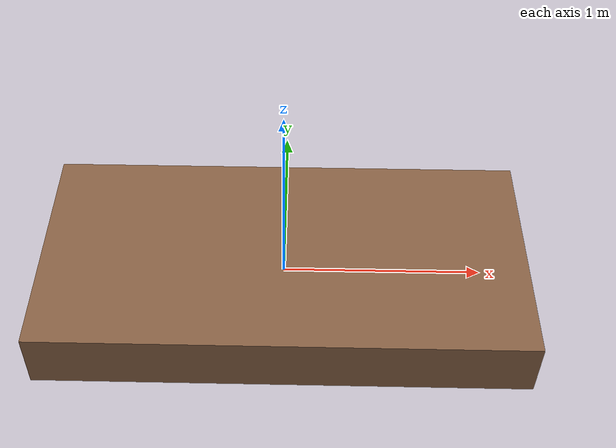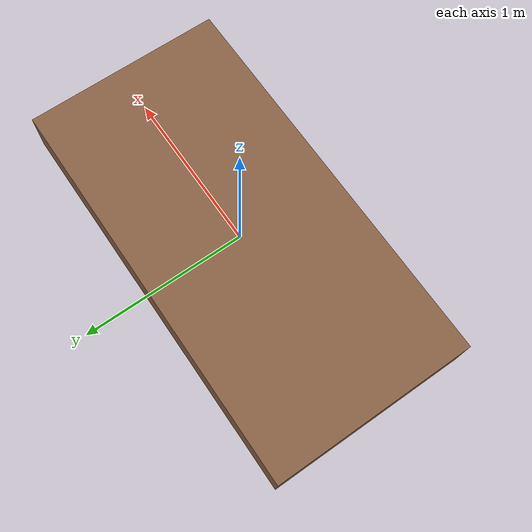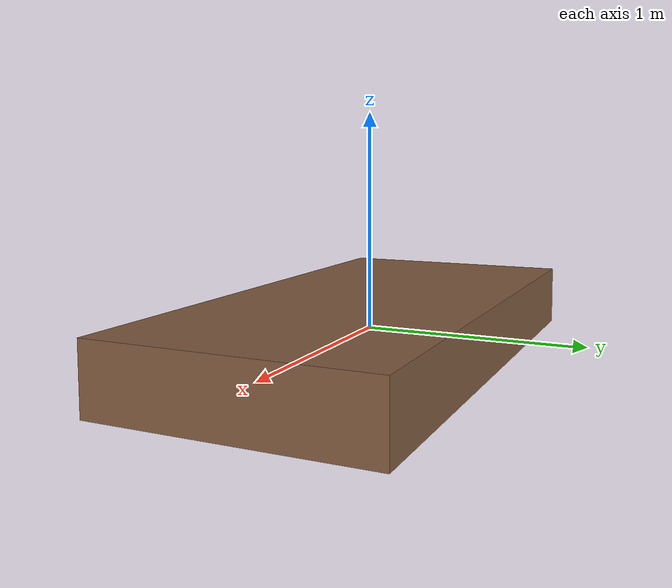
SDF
<?xml version='1.0'?>
<sdf version='1.6'>
  <model name='frame_stack_static'>
    <static>true</static>
    <link name='link'>
      <pose frame=''>0 0 0 0 -0 0</pose>
      <inertial>
        <mass>1</mass>
        <pose frame=''>0 0 0 0 -0 0</pose>
        <inertia>
          <ixx>1</ixx>
          <ixy>0</ixy>
          <ixz>0</ixz>
          <iyy>1</iyy>
          <iyz>0</iyz>
          <izz>1</izz>
        </inertia>
      </inertial>
      <self_collide>0</self_collide>
      <kinematic>0</kinematic>
      <gravity>1</gravity>
      <visual name='visual'>
        <pose frame=''>0 0 0 0 -0 0</pose>
        <geometry>
          <box>
            <size>2.4384 1.2192 0.3048</size> <!-- About 3 frames. -->
          </box>
        </geometry>
        <material>
          <shader type='pixel'>
            <normal_map>__default__</normal_map>
          </shader>
          <ambient>0.52 0.37 0.26 1</ambient>
          <diffuse>0.52 0.37 0.26 0</diffuse>
          <specular>1 0.55 0.39 0</specular>
          <emissive>0 0 0 1</emissive>
          <script>
            <name>ModelPreview_7::link::visual_MATERIAL_</name>
            <uri>__default__</uri>
          </script>
        </material>
        <cast_shadows>1</cast_shadows>
        <transparency>0</transparency>
      </visual>
      <collision name='collision'>
        <laser_retro>0</laser_retro>
        <max_contacts>10</max_contacts>
        <pose frame=''>0 0 0 0 -0 0</pose>
        <geometry>
          <box>
            <size>2.4384 1.2192 0.3048</size> <!-- About 3 frames. -->
          </box>
        </geometry>
        <surface>
          <friction>
            <ode>
              <mu>1</mu>
              <mu2>1</mu2>
              <fdir1>0 0 0</fdir1>
              <slip1>0</slip1>
              <slip2>0</slip2>
            </ode>
            <torsional>
              <coefficient>1</coefficient>
              <patch_radius>0</patch_radius>
              <surface_radius>0</surface_radius>
              <use_patch_radius>1</use_patch_radius>
              <ode>
                <slip>0</slip>
              </ode>
            </torsional>
          </friction>
          <bounce>
            <restitution_coefficient>0</restitution_coefficient>
            <threshold>1e+06</threshold>
          </bounce>
          <contact>
            <collide_without_contact>0</collide_without_contact>
            <collide_without_contact_bitmask>1</collide_without_contact_bitmask>
            <collide_bitmask>1</collide_bitmask>
            <ode>
              <soft_cfm>0</soft_cfm>
              <soft_erp>0.2</soft_erp>
              <kp>1e+13</kp>
              <kd>1</kd>
              <max_vel>0.0</max_vel>
              <min_depth>0.0001</min_depth>
            </ode>
            <bullet>
              <split_impulse>1</split_impulse>
              <split_impulse_penetration_threshold>-0.01</split_impulse_penetration_threshold>
              <soft_cfm>0</soft_cfm>
              <soft_erp>0.2</soft_erp>
              <kp>1e+13</kp>
              <kd>1</kd>
            </bullet>
          </contact>
        </surface>
      </collision>
    </link>
    <allow_auto_disable>1</allow_auto_disable>
  </model>
</sdf>
